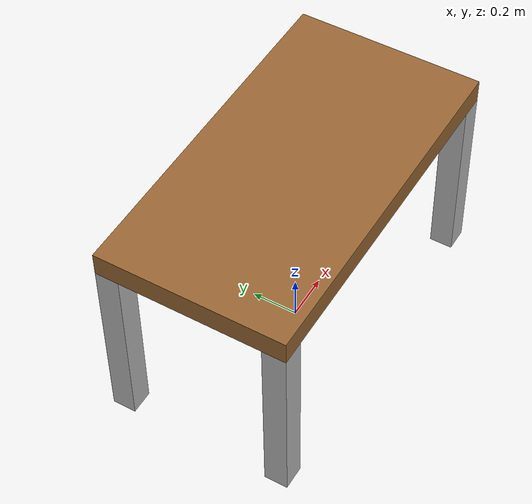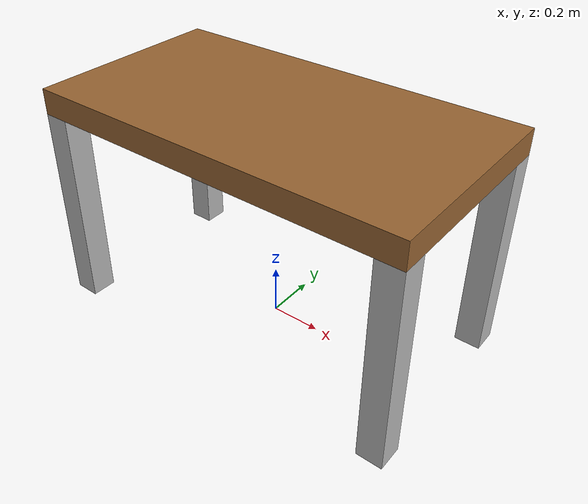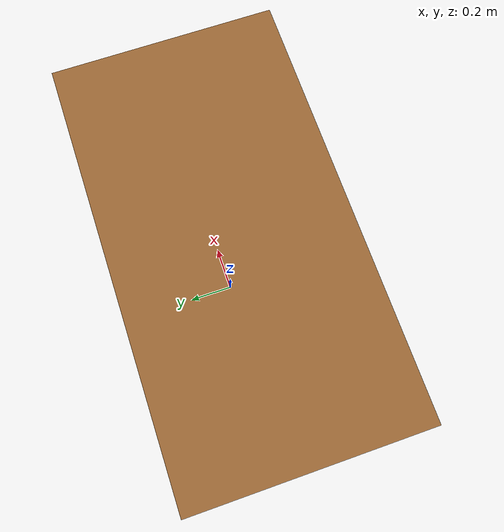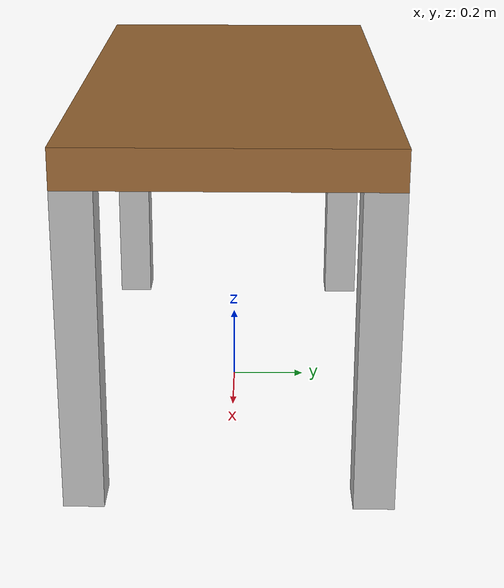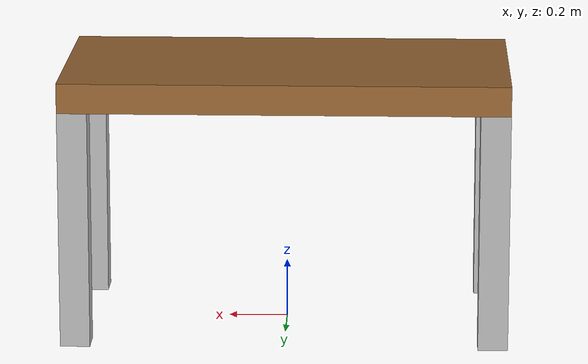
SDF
<?xml version="1.0" ?>
<sdf version="1.6">
  <model name="mesa">
    <static>true</static>
    <link name="table_link">

      <!-- Superficie de la mesa -->
      <visual name="table_top">
        <geometry>
          <box>
            <!-- Ajustar dimensiones: Largo x Ancho x Grosor -->
            <size>1.5 0.8 0.1</size>
          </box>
        </geometry>
        <material>
          <ambient>0.6 0.4 0.2 1</ambient>
          <diffuse>0.6 0.4 0.2 1</diffuse>
        </material>
        <!-- Ajustar la altura de la superficie de la mesa -->
        <pose>0 0 0.85 0 0 0</pose>
      </visual>

      <!-- Pata 1 -->
      <visual name="leg1">
        <geometry>
          <box>
            <!-- Ajustar grosor y altura de las patas -->
            <size>0.1 0.1 0.8</size>
          </box>
        </geometry>
        <pose>-0.7 -0.35 0.4 0 0 0</pose> <!-- Ajustar posición relativa -->
      </visual>

      <!-- Pata 2 -->
      <visual name="leg2">
        <geometry>
          <box>
            <size>0.1 0.1 0.8</size>
          </box>
        </geometry>
        <pose>0.7 -0.35 0.4 0 0 0</pose>
      </visual>

      <!-- Pata 3 -->
      <visual name="leg3">
        <geometry>
          <box>
            <size>0.1 0.1 0.8</size>
          </box>
        </geometry>
        <pose>-0.7 0.35 0.4 0 0 0</pose>
      </visual>

      <!-- Pata 4 -->
      <visual name="leg4">
        <geometry>
          <box>
            <size>0.1 0.1 0.8</size>
          </box>
        </geometry>
        <pose>0.7 0.35 0.4 0 0 0</pose>
      </visual>

    </link>
  </model>
</sdf>
